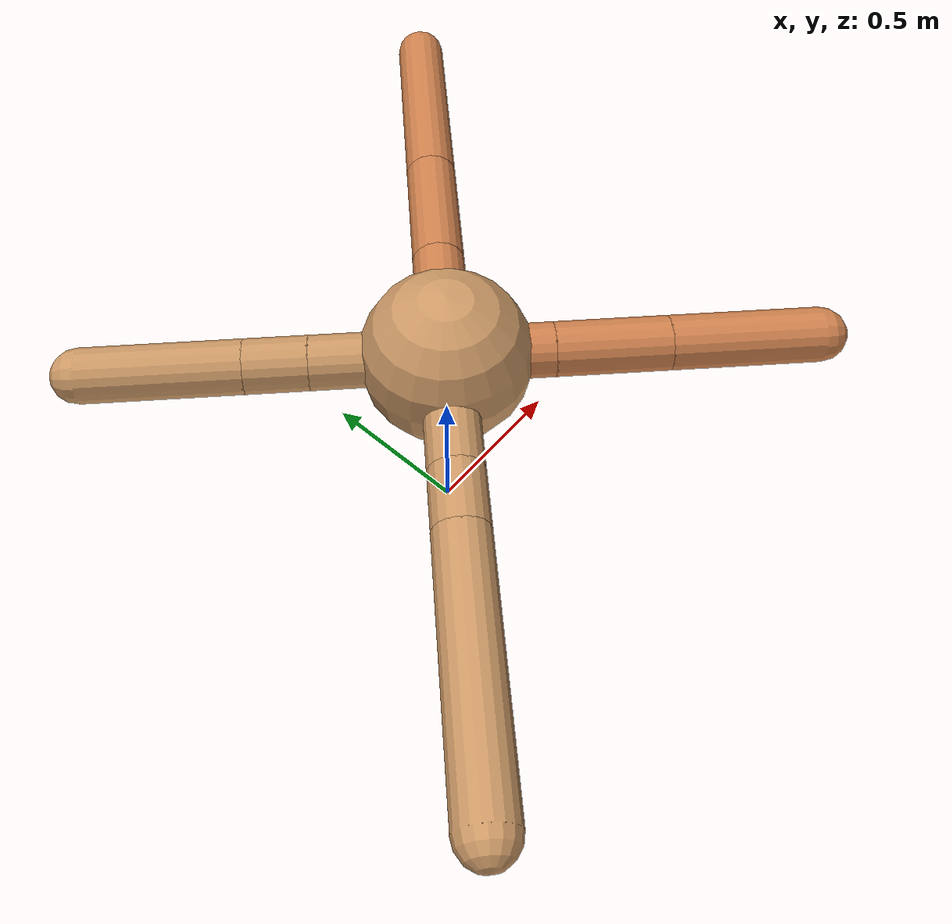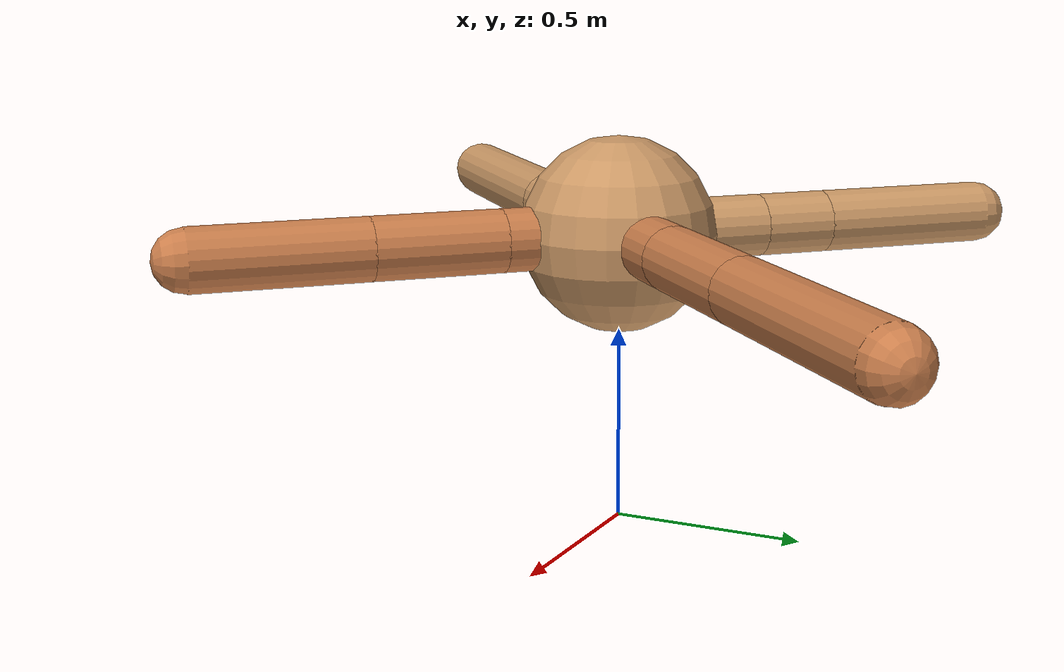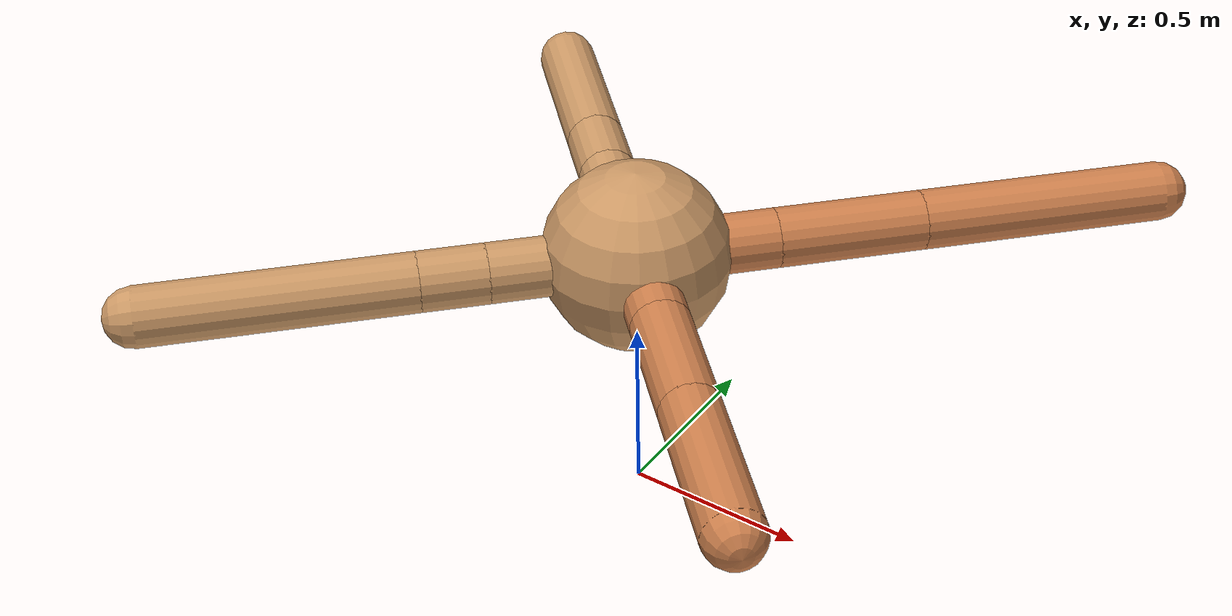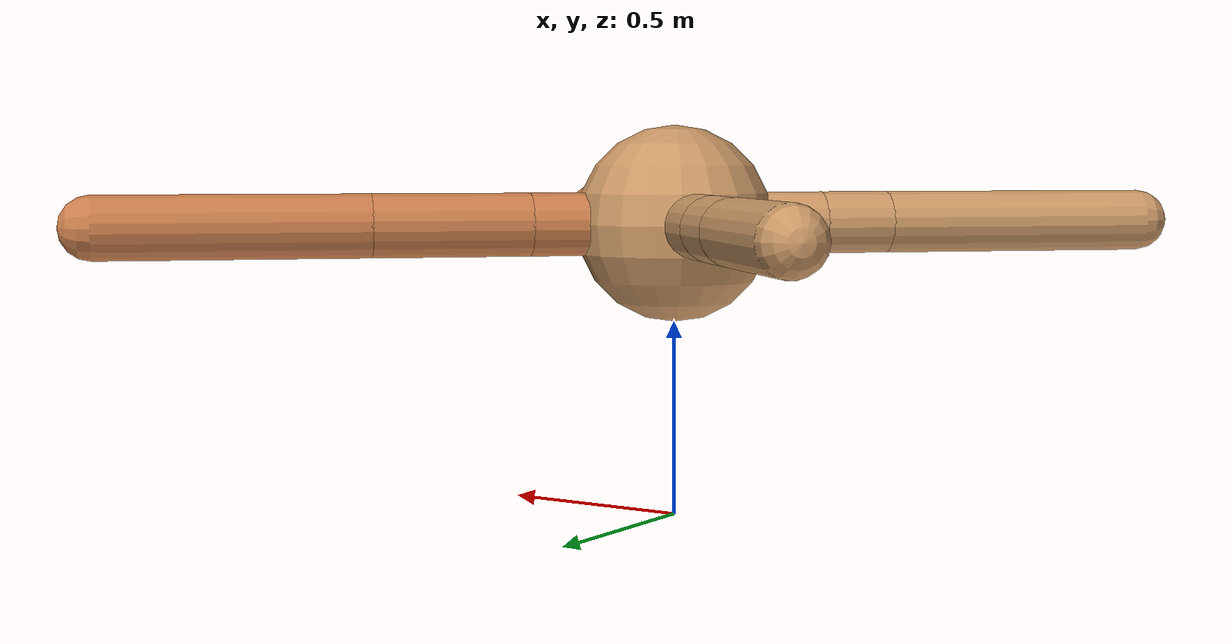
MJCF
<mujoco model="ant">
  <compiler angle="degree" coordinate="local" inertiafromgeom="true" />
  <option integrator="RK4" timestep="0.01" />
  <custom>
    <numeric data="0.0 0.0 0.55 1.0 0.0 0.0 0.0 0.0 1.0 0.0 -1.0 0.0 -1.0 0.0 1.0" name="init_qpos" />
  </custom>
  <default>
    <joint armature="1" damping="1" limited="true" />
    <geom conaffinity="0" condim="3" density="5.0" friction="1.5 0.1 0.1" margin="0.01" rgba="0.8 0.6 0.4 1" />
  </default>
  <worldbody>
    <body name="torso" pos="0 0 0.75">
      <geom name="torso_geom" pos="0 0 0" size="0.25" type="sphere" />

      <body name="front_left_leg" pos="0 0 0">
        <geom fromto="0.0 0.0 0.0 0.26247480605182355 0.26247480605182355 0.0" name="aux_1_geom" size="0.08" type="capsule" rgba=".8 .5 .3 1" />
        <body name="aux_1" pos="0.26247480605182355 0.26247480605182355 0.0">
          <joint axis="0 0 1" name="hip_1" pos="0.0 0.0 0.0" range="-40 40" type="hinge" />
          <geom fromto="0.0 0.0 0.0 0.2797327875488544 0.2797327875488544 0.0" name="left_leg_geom" size="0.08" type="capsule" rgba=".8 .5 .3 1" />
          <body pos="0.2797327875488544 0.2797327875488544 0.0" name="front_left_foot">
            <joint axis="-1 1 0" name="ankle_1" pos="0.0 0.0 0.0" range="30 100" type="hinge" />
            <geom fromto="0.0 0.0 0.0 0.4693515380837269 0.4693515380837269 0.0" name="left_ankle_geom" size="0.08" type="capsule" rgba=".8 .5 .3 1" />
          </body>
        </body>
      </body>
      <body name="front_right_leg" pos="0 0 0">
        <geom fromto="0.0 0.0 0.0 -0.27416930806295675 0.27416930806295675 0.0" name="aux_2_geom" size="0.08" type="capsule" />
        <body name="aux_2" pos="-0.27416930806295675 0.27416930806295675 0.0">
          <joint axis="0 0 1" name="hip_2" pos="0.0 0.0 0.0" range="-40 40" type="hinge" />
          <geom fromto="0.0 0.0 0.0 -0.12872382706592103 0.12872382706592103 0.0" name="right_leg_geom" size="0.08" type="capsule" />
          <body pos="-0.12872382706592103 0.12872382706592103 0.0" name="front_right_foot">
            <joint axis="1 1 0" name="ankle_2" pos="0.0 0.0 0.0" range="-100 -30" type="hinge" />
            <geom fromto="0.0 0.0 0.0 -0.3256618187079621 0.3256618187079621 0.0" name="right_ankle_geom" size="0.08" type="capsule" />
          </body>
        </body>
      </body>
      <body name="left_back_leg" pos="0 0 0">
        <geom fromto="0.0 0.0 0.0 -0.27418174983437404 -0.27418174983437404 0.0" name="aux_3_geom" size="0.08" type="capsule" />
        <body name="aux_3" pos="-0.27418174983437404 -0.27418174983437404 0.0">
          <joint axis="0 0 1" name="hip_3" pos="0.0 0.0 0.0" range="-40 40" type="hinge" />
          <geom fromto="0.0 0.0 0.0 -0.1251856764710338 -0.1251856764710338 0.0" name="back_leg_geom" size="0.08" type="capsule" />
          <body pos="-0.1251856764710338 -0.1251856764710338 0.0" name="left_back_foot">
            <joint axis="-1 1 0" name="ankle_3" pos="0.0 0.0 0.0" range="-100 -30" type="hinge" />
            <geom fromto="0.0 0.0 0.0 -0.4996856941636493 -0.4996856941636493 0.0" name="third_ankle_geom" size="0.08" type="capsule" />
          </body>
        </body>
      </body>
      <body name="right_back_leg" pos="0 0 0">
        <geom fromto="0.0 0.0 0.0 0.21743797332168438 -0.21743797332168438 0.0" name="aux_4_geom" size="0.08" type="capsule" rgba=".8 .5 .3 1" />
        <body name="aux_4" pos="0.21743797332168438 -0.21743797332168438 0.0">
          <joint axis="0 0 1" name="hip_4" pos="0.0 0.0 0.0" range="-40 40" type="hinge" />
          <geom fromto="0.0 0.0 0.0 0.23430506874098303 -0.23430506874098303 0.0" name="rightback_leg_geom" size="0.08" type="capsule" rgba=".8 .5 .3 1" />
          <body pos="0.23430506874098303 -0.23430506874098303 0.0" name="right_back_foot">
            <joint axis="1 1 0" name="ankle_4" pos="0.0 0.0 0.0" range="30 100" type="hinge" />
            <geom fromto="0.0 0.0 0.0 0.3110259076306874 -0.3110259076306874 0.0" name="fourth_ankle_geom" size="0.08" type="capsule" rgba=".8 .5 .3 1" />
          </body>
        </body>
      </body>
    </body>
  </worldbody>
  <actuator>
    <motor ctrllimited="true" ctrlrange="-1.0 1.0" joint="hip_4" gear="150" />
    <motor ctrllimited="true" ctrlrange="-1.0 1.0" joint="ankle_4" gear="150" />
    <motor ctrllimited="true" ctrlrange="-1.0 1.0" joint="hip_1" gear="150" />
    <motor ctrllimited="true" ctrlrange="-1.0 1.0" joint="ankle_1" gear="150" />
    <motor ctrllimited="true" ctrlrange="-1.0 1.0" joint="hip_2" gear="150" />
    <motor ctrllimited="true" ctrlrange="-1.0 1.0" joint="ankle_2" gear="150" />
    <motor ctrllimited="true" ctrlrange="-1.0 1.0" joint="hip_3" gear="150" />
    <motor ctrllimited="true" ctrlrange="-1.0 1.0" joint="ankle_3" gear="150" />
  </actuator>
</mujoco>
